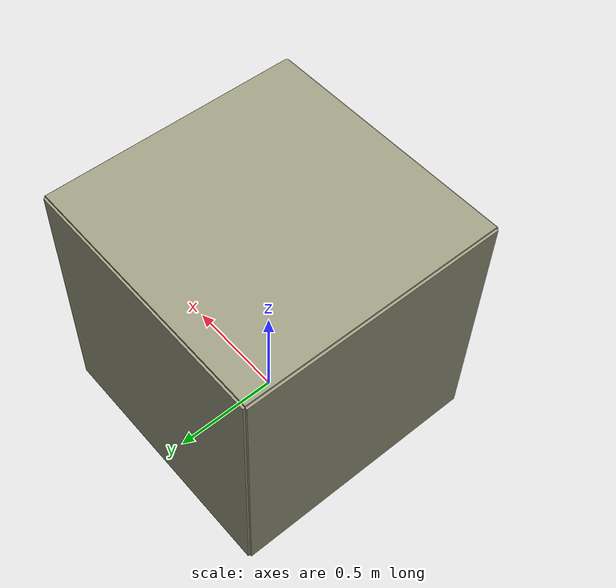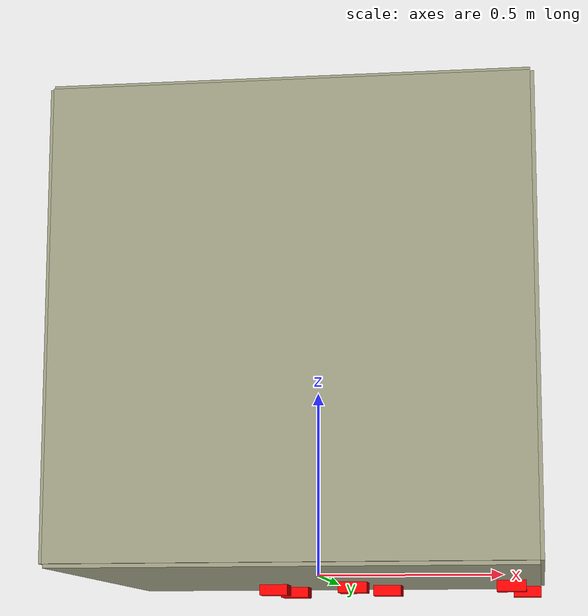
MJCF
<?xml version="1.0" ?>
<mujoco model="blocks">
  <compiler angle="radian" inertiafromgeom="true" texturedir="texture/"/>
  <size nuser_geom="1" nuser_jnt="1"/>
  <option gravity="0 0 -9.8" iterations="20" timestep="0.001" viscosity="0"/>
  <asset>
    <material name="MatGnd" reflectance="0.0" rgba=".5 .55 .5 1" shininess=".2" specular=".3"/>
    <texture fileup="/home/jmathai/scene_creator/mnist_png/training/2/5908.png" name="MNIST_tex_1" type="cube"/>
    <material name="MNIST_mat_1" texture="MNIST_tex_1"/>
    <texture fileright="/home/jmathai/scene_creator/mnist_png/training/5/30082.png" name="MNIST_tex_2" type="cube"/>
    <material name="MNIST_mat_2" texture="MNIST_tex_2"/>
    <texture fileright="/home/jmathai/scene_creator/mnist_png/training/9/29213.png" name="MNIST_tex_3" type="cube"/>
    <material name="MNIST_mat_3" texture="MNIST_tex_3"/>
    <texture fileback="/home/jmathai/scene_creator/mnist_png/training/2/48525.png" name="MNIST_tex_4" type="cube"/>
    <material name="MNIST_mat_4" texture="MNIST_tex_4"/>
    <texture fileup="/home/jmathai/scene_creator/mnist_png/testing/4/3437.png" name="MNIST_tex_5" type="cube"/>
    <material name="MNIST_mat_5" texture="MNIST_tex_5"/>
    <texture filefront="/home/jmathai/scene_creator/mnist_png/testing/6/7709.png" name="MNIST_tex_6" type="cube"/>
    <material name="MNIST_mat_6" texture="MNIST_tex_6"/>
  </asset>
  <worldbody>
    <light cutoff="40" diffuse=".4 .4 .4" dir="0 0 -1" directional="true" exponent="10" pos="0 0 1.5" specular=".7 .7 .7"/>
    <geom conaffinity="1" contype="1" material="MatGnd" name="tableTop" pos="0 0 0" rgba=".6 .6 .5 1" size="0.6 0.6 0.01" type="box"/>
    <geom conaffinity="1" contype="1" material="MatGnd" name="table_wall_1" pos="0.6 0.0 0.6" rgba=".6 .6 .5 1" size="0.6 0.6 0.01" type="box" zaxis="1 0 0"/>
    <geom conaffinity="1" contype="1" material="MatGnd" name="table_wall_2" pos="-0.6 0.0 0.6" rgba=".6 .6 .5 1" size="0.6 0.6 0.01" type="box" zaxis="1 0 0"/>
    <geom conaffinity="1" contype="1" material="MatGnd" name="table_wall_3" pos="0.0 0.6 0.6" rgba=".6 .6 .5 1" size="0.6 0.6 0.01" type="box" zaxis="0 1 0"/>
    <geom conaffinity="1" contype="1" material="MatGnd" name="table_wall_4" pos="0.0 -0.6 0.6" rgba=".6 .6 .5 1" size="0.6 0.6 0.01" type="box" zaxis="0 1 0"/>
    <geom conaffinity="1" contype="1" name="table_wall_5" pos="0.0 0.0 1.2" rgba=".6 .6 .5 1" size="0.6 0.6 0.01" type="box"/>
    <body name="custom_object_1" pos="0.08 0.16 0.0">
      <geom conaffinity="1" contype="1" material="MNIST_mat_1" name="cBox_1" rgba="1 0 0 1" size="0.04 0.04 0.04" type="box" user="1"/>
      <joint armature="0" damping="0" limited="false" name="cBox_joint_1" type="free" user="010"/>
    </body>
    <body name="custom_object_2" pos="0.52 0.12 0.0">
      <geom conaffinity="1" contype="1" material="MNIST_mat_2" name="cBox_2" rgba="1 0 0 1" size="0.04 0.04 0.04" type="box" user="1"/>
      <joint armature="0" damping="0" limited="false" name="cBox_joint_2" type="free" user="010"/>
    </body>
    <body name="custom_object_3" pos="0.16 0.36 0.0">
      <geom conaffinity="1" contype="1" material="MNIST_mat_3" name="cBox_3" rgba="1 0 0 1" size="0.04 0.04 0.04" type="box" user="1"/>
      <joint armature="0" damping="0" limited="false" name="cBox_joint_3" type="free" user="010"/>
    </body>
    <body name="custom_object_4" pos="0.56 0.48 0.0">
      <geom conaffinity="1" contype="1" material="MNIST_mat_4" name="cBox_4" rgba="1 0 0 1" size="0.04 0.04 0.04" type="box" user="1"/>
      <joint armature="0" damping="0" limited="false" name="cBox_joint_4" type="free" user="010"/>
    </body>
    <body name="custom_object_5" pos="-0.16 0.28 0.0">
      <geom conaffinity="1" contype="1" material="MNIST_mat_5" name="cBox_5" rgba="1 0 0 1" size="0.04 0.04 0.04" type="box" user="1"/>
      <joint armature="0" damping="0" limited="false" name="cBox_joint_5" type="free" user="010"/>
    </body>
    <body name="custom_object_6" pos="-0.12 0.44 0.0">
      <geom conaffinity="1" contype="1" material="MNIST_mat_6" name="cBox_6" rgba="1 0 0 1" size="0.04 0.04 0.04" type="box" user="1"/>
      <joint armature="0" damping="0" limited="false" name="cBox_joint_6" type="free" user="010"/>
    </body>
  </worldbody>
</mujoco>
